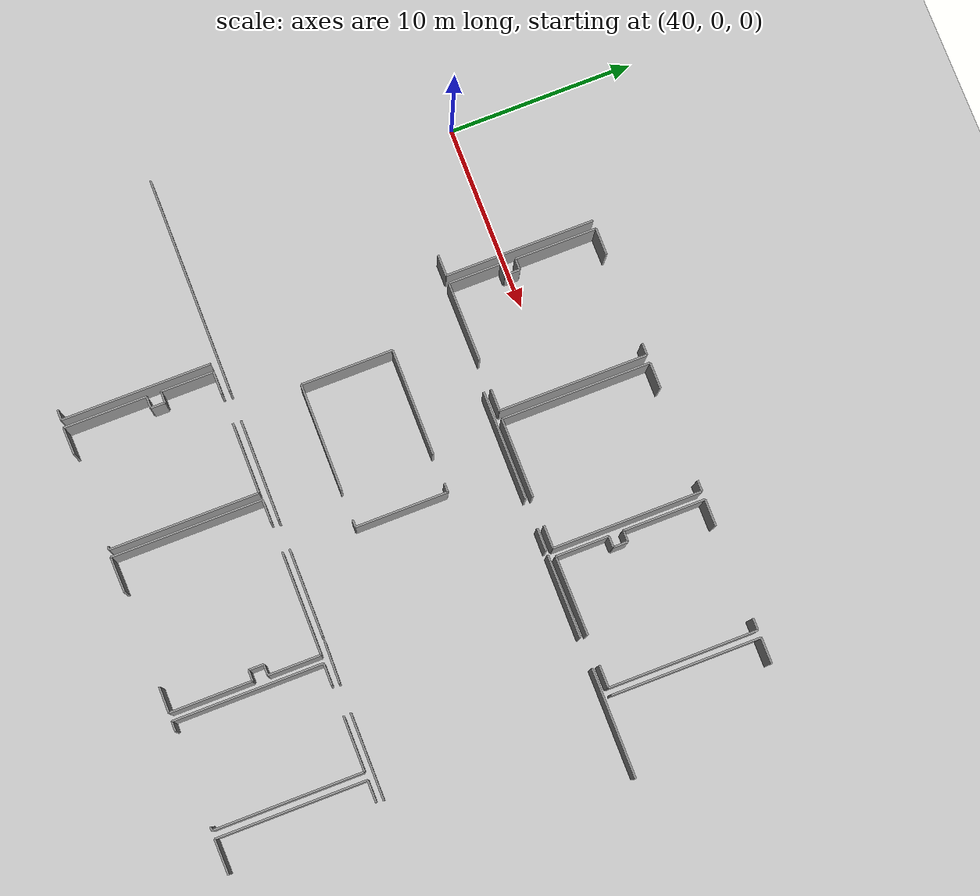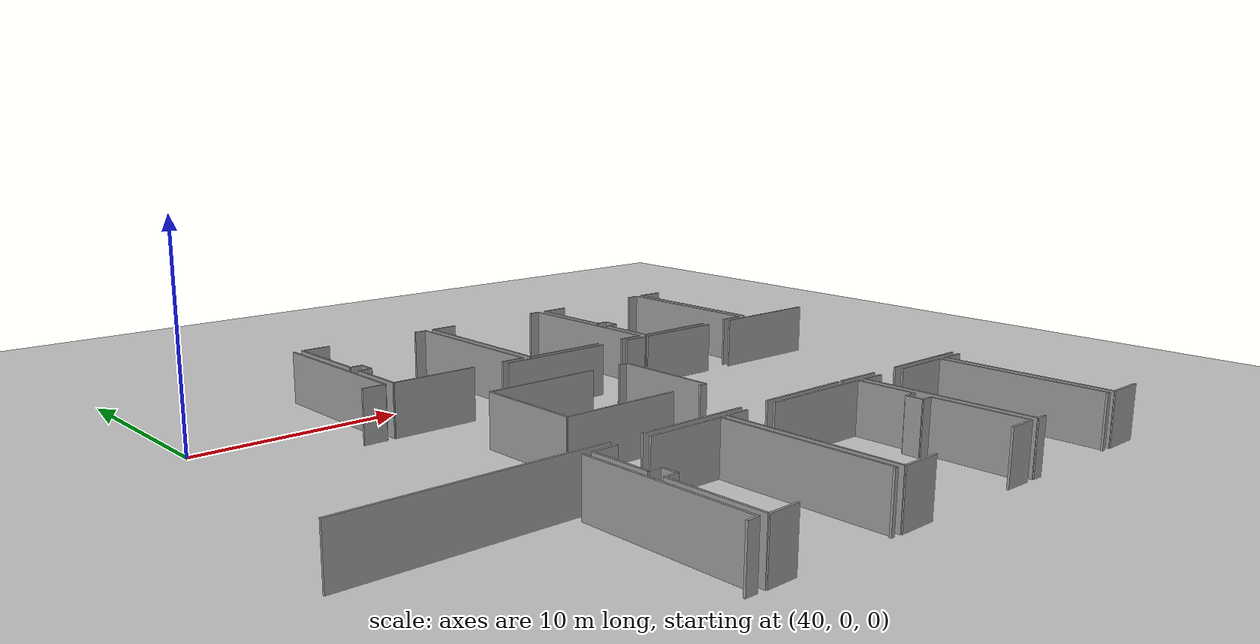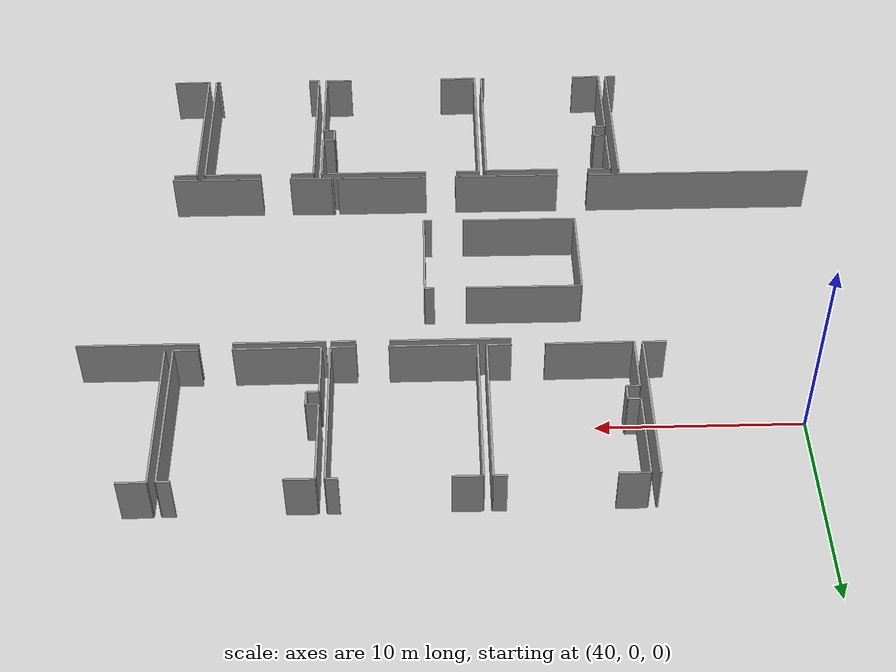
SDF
<sdf version="1.6">
 <world name="default">
  <model name="ground_plane">
   <static>1</static>
   <link name="link">
    <collision name="collision">
     <geometry><plane><normal>0 0 1</normal><size>100 100</size></plane></geometry>
     <surface><friction><ode><mu>100</mu><mu2>50</mu2></ode></friction></surface>
    </collision>
    <visual name="visual">
     <cast_shadows>0</cast_shadows>
     <geometry><plane><normal>0 0 1</normal><size>100 100</size></plane></geometry>
     <material>
      <script><uri>file://media/materials/scripts/gazebo.material</uri><name>Gazebo/Grey</name></script>
     </material>
    </visual>
   </link>
  </model>
  <model name="0510035341_A_40_1_103">
   <static>1</static>
   <link name="Wall_498">
    <collision name="Wall_498_Collision">
     <geometry><box><size>5.82058282014 0.1 2.5</size></box></geometry>
     <pose>2.91029141007 0 1.25 0 0 0</pose>
    </collision>
    <visual name="Wall_498_Visual">
     <pose>2.91029141007 0 1.25 0 0 0</pose>
     <geometry><box><size>5.82058282014 0.1 2.5</size></box></geometry>
     <material>
      <script><uri>file://media/materials/scripts/gazebo.material</uri><name>Gazebo/Grey</name></script>
      <ambient>1 1 1 1</ambient>
     </material>
    </visual>
    <pose>166.751063425 -27.7041457685 0 0 0 0.0</pose>
   </link>
   <link name="Wall_499">
    <collision name="Wall_499_Collision">
     <geometry><box><size>1.2197320805 0.1 2.5</size></box></geometry>
     <pose>0.609866040251 0 1.25 0 0 0</pose>
    </collision>
    <visual name="Wall_499_Visual">
     <pose>0.609866040251 0 1.25 0 0 0</pose>
     <geometry><box><size>1.2197320805 0.1 2.5</size></box></geometry>
     <material>
      <script><uri>file://media/materials/scripts/gazebo.material</uri><name>Gazebo/Grey</name></script>
      <ambient>1 1 1 1</ambient>
     </material>
    </visual>
    <pose>174.164941908 -27.7041457685 0 0 0 0.0</pose>
   </link>
   <link name="Wall_500">
    <collision name="Wall_500_Collision">
     <geometry><box><size>4.67856009142 0.1 2.5</size></box></geometry>
     <pose>2.33928004571 0 1.25 0 0 0</pose>
    </collision>
    <visual name="Wall_500_Visual">
     <pose>2.33928004571 0 1.25 0 0 0</pose>
     <geometry><box><size>4.67856009142 0.1 2.5</size></box></geometry>
     <material>
      <script><uri>file://media/materials/scripts/gazebo.material</uri><name>Gazebo/Grey</name></script>
      <ambient>1 1 1 1</ambient>
     </material>
    </visual>
    <pose>175.384673989 -39.6665608533 0 0 0 3.14159265359</pose>
   </link>
   <link name="Wall_501">
    <collision name="Wall_501_Collision">
     <geometry><box><size>5.42263983239 0.1 2.5</size></box></geometry>
     <pose>2.7113199162 0 1.25 0 0 0</pose>
    </collision>
    <visual name="Wall_501_Visual">
     <pose>2.7113199162 0 1.25 0 0 0</pose>
     <geometry><box><size>5.42263983239 0.1 2.5</size></box></geometry>
     <material>
      <script><uri>file://media/materials/scripts/gazebo.material</uri><name>Gazebo/Grey</name></script>
      <ambient>1 1 1 1</ambient>
     </material>
    </visual>
    <pose>169.148371532 -39.6665608533 0 0 0 3.14159265359</pose>
   </link>
   <link name="Wall_502">
    <collision name="Wall_502_Collision">
     <geometry><box><size>11.6873849279 0.1 2.5</size></box></geometry>
     <pose>5.84369246397 0 1.25 0 0 0</pose>
    </collision>
    <visual name="Wall_502_Visual">
     <pose>5.84369246397 0 1.25 0 0 0</pose>
     <geometry><box><size>11.6873849279 0.1 2.5</size></box></geometry>
     <material>
      <script><uri>file://media/materials/scripts/gazebo.material</uri><name>Gazebo/Grey</name></script>
      <ambient>1 1 1 1</ambient>
     </material>
    </visual>
    <pose>162.113389626 -39.6665608533 0 0 0 3.14159265359</pose>
   </link>
   <link name="Wall_505">
    <collision name="Wall_505_Collision">
     <geometry><box><size>4.94927306203 0.1 2.5</size></box></geometry>
     <pose>2.47463653101 0 1.25 0 0 0</pose>
    </collision>
    <visual name="Wall_505_Visual">
     <pose>2.47463653101 0 1.25 0 0 0</pose>
     <geometry><box><size>4.94927306203 0.1 2.5</size></box></geometry>
     <material>
      <script><uri>file://media/materials/scripts/gazebo.material</uri><name>Gazebo/Grey</name></script>
      <ambient>1 1 1 1</ambient>
     </material>
    </visual>
    <pose>163.089581614 -36.1818297251 0 0 0 1.57079632679</pose>
   </link>
   <link name="Wall_506">
    <collision name="Wall_506_Collision">
     <geometry><box><size>5.70681226589 0.1 2.5</size></box></geometry>
     <pose>2.85340613294 0 1.25 0 0 0</pose>
    </collision>
    <visual name="Wall_506_Visual">
     <pose>2.85340613294 0 1.25 0 0 0</pose>
     <geometry><box><size>5.70681226589 0.1 2.5</size></box></geometry>
     <material>
      <script><uri>file://media/materials/scripts/gazebo.material</uri><name>Gazebo/Grey</name></script>
      <ambient>1 1 1 1</ambient>
     </material>
    </visual>
    <pose>163.089581614 -31.2325566631 0 0 0 0.0</pose>
   </link>
   <link name="Wall_507">
    <collision name="Wall_507_Collision">
     <geometry><box><size>0.472097009714 0.1 2.5</size></box></geometry>
     <pose>0.236048504857 0 1.25 0 0 0</pose>
    </collision>
    <visual name="Wall_507_Visual">
     <pose>0.236048504857 0 1.25 0 0 0</pose>
     <geometry><box><size>0.472097009714 0.1 2.5</size></box></geometry>
     <material>
      <script><uri>file://media/materials/scripts/gazebo.material</uri><name>Gazebo/Grey</name></script>
      <ambient>1 1 1 1</ambient>
     </material>
    </visual>
    <pose>170.377499841 -31.2325566631 0 0 0 0.0</pose>
   </link>
   <link name="Wall_508">
    <collision name="Wall_508_Collision">
     <geometry><box><size>4.96095486001 0.1 2.5</size></box></geometry>
     <pose>2.48047743 0 1.25 0 0 0</pose>
    </collision>
    <visual name="Wall_508_Visual">
     <pose>2.48047743 0 1.25 0 0 0</pose>
     <geometry><box><size>4.96095486001 0.1 2.5</size></box></geometry>
     <material>
      <script><uri>file://media/materials/scripts/gazebo.material</uri><name>Gazebo/Grey</name></script>
      <ambient>1 1 1 1</ambient>
     </material>
    </visual>
    <pose>170.849596851 -31.2325566631 0 0 0 -1.57079632679</pose>
   </link>
   <link name="Wall_509">
    <collision name="Wall_509_Collision">
     <geometry><box><size>0.395149514317 0.1 2.5</size></box></geometry>
     <pose>0.197574757158 0 1.25 0 0 0</pose>
    </collision>
    <visual name="Wall_509_Visual">
     <pose>0.197574757158 0 1.25 0 0 0</pose>
     <geometry><box><size>0.395149514317 0.1 2.5</size></box></geometry>
     <material>
      <script><uri>file://media/materials/scripts/gazebo.material</uri><name>Gazebo/Grey</name></script>
      <ambient>1 1 1 1</ambient>
     </material>
    </visual>
    <pose>170.849596851 -36.1935115231 0 0 0 3.14159265359</pose>
   </link>
   <link name="Wall_510">
    <collision name="Wall_510_Collision">
     <geometry><box><size>5.76497913931 0.1 2.5</size></box></geometry>
     <pose>2.88248956966 0 1.25 0 0 0</pose>
    </collision>
    <visual name="Wall_510_Visual">
     <pose>2.88248956966 0 1.25 0 0 0</pose>
     <geometry><box><size>5.76497913931 0.1 2.5</size></box></geometry>
     <material>
      <script><uri>file://media/materials/scripts/gazebo.material</uri><name>Gazebo/Grey</name></script>
      <ambient>1 1 1 1</ambient>
     </material>
    </visual>
    <pose>168.854548918 -36.1935115231 0 0 0 3.13956631391</pose>
   </link>
   <link name="Wall_511">
    <collision name="Wall_511_Collision">
     <geometry><box><size>0.100311091359 0.1 2.5</size></box></geometry>
     <pose>0.0501555456797 0 1.25 0 0 0</pose>
    </collision>
    <visual name="Wall_511_Visual">
     <pose>0.0501555456797 0 1.25 0 0 0</pose>
     <geometry><box><size>0.100311091359 0.1 2.5</size></box></geometry>
     <material>
      <script><uri>file://media/materials/scripts/gazebo.material</uri><name>Gazebo/Grey</name></script>
      <ambient>1 1 1 1</ambient>
     </material>
    </visual>
    <pose>175.700590439 -39.6571646245 0 0 0 3.14159265359</pose>
   </link>
   <link name="Wall_512">
    <collision name="Wall_512_Collision">
     <geometry><box><size>4.46066916386 0.1 2.5</size></box></geometry>
     <pose>2.23033458193 0 1.25 0 0 0</pose>
    </collision>
    <visual name="Wall_512_Visual">
     <pose>2.23033458193 0 1.25 0 0 0</pose>
     <geometry><box><size>4.46066916386 0.1 2.5</size></box></geometry>
     <material>
      <script><uri>file://media/materials/scripts/gazebo.material</uri><name>Gazebo/Grey</name></script>
      <ambient>1 1 1 1</ambient>
     </material>
    </visual>
    <pose>175.600279347 -27.7023681036 0 0 0 0.0</pose>
   </link>
   <link name="Wall_513">
    <collision name="Wall_513_Collision">
     <geometry><box><size>5.85232683639 0.1 2.5</size></box></geometry>
     <pose>2.9261634182 0 1.25 0 0 0</pose>
    </collision>
    <visual name="Wall_513_Visual">
     <pose>2.9261634182 0 1.25 0 0 0</pose>
     <geometry><box><size>5.85232683639 0.1 2.5</size></box></geometry>
     <material>
      <script><uri>file://media/materials/scripts/gazebo.material</uri><name>Gazebo/Grey</name></script>
      <ambient>1 1 1 1</ambient>
     </material>
    </visual>
    <pose>181.66440226 -27.7023681036 0 0 0 0.0</pose>
   </link>
   <link name="Wall_518">
    <collision name="Wall_518_Collision">
     <geometry><box><size>4.63361056441 0.1 2.5</size></box></geometry>
     <pose>2.3168052822 0 1.25 0 0 0</pose>
    </collision>
    <visual name="Wall_518_Visual">
     <pose>2.3168052822 0 1.25 0 0 0</pose>
     <geometry><box><size>4.63361056441 0.1 2.5</size></box></geometry>
     <material>
      <script><uri>file://media/materials/scripts/gazebo.material</uri><name>Gazebo/Grey</name></script>
      <ambient>1 1 1 1</ambient>
     </material>
    </visual>
    <pose>184.048504857 -39.7005904387 0 0 0 3.14159265359</pose>
   </link>
   <link name="Wall_519">
    <collision name="Wall_519_Collision">
     <geometry><box><size>2.18772073517 0.1 2.5</size></box></geometry>
     <pose>1.09386036759 0 1.25 0 0 0</pose>
    </collision>
    <visual name="Wall_519_Visual">
     <pose>1.09386036759 0 1.25 0 0 0</pose>
     <geometry><box><size>2.18772073517 0.1 2.5</size></box></geometry>
     <material>
      <script><uri>file://media/materials/scripts/gazebo.material</uri><name>Gazebo/Grey</name></script>
      <ambient>1 1 1 1</ambient>
     </material>
    </visual>
    <pose>177.887880135 -39.7005904387 0 0 0 3.12174155204</pose>
   </link>
   <link name="Wall_570">
    <collision name="Wall_570_Collision">
     <geometry><box><size>8.03022030347 0.1 2.5</size></box></geometry>
     <pose>4.01511015174 0 1.25 0 0 0</pose>
    </collision>
    <visual name="Wall_570_Visual">
     <pose>4.01511015174 0 1.25 0 0 0</pose>
     <geometry><box><size>8.03022030347 0.1 2.5</size></box></geometry>
     <material>
      <script><uri>file://media/materials/scripts/gazebo.material</uri><name>Gazebo/Grey</name></script>
      <ambient>1 1 1 1</ambient>
     </material>
    </visual>
    <pose>160.463462637 -19.2884261317 0 0 0 -1.57079632679</pose>
   </link>
   <link name="Wall_571">
    <collision name="Wall_571_Collision">
     <geometry><box><size>1.13643578186 0.1 2.5</size></box></geometry>
     <pose>0.568217890928 0 1.25 0 0 0</pose>
    </collision>
    <visual name="Wall_571_Visual">
     <pose>0.568217890928 0 1.25 0 0 0</pose>
     <geometry><box><size>1.13643578186 0.1 2.5</size></box></geometry>
     <material>
      <script><uri>file://media/materials/scripts/gazebo.material</uri><name>Gazebo/Grey</name></script>
      <ambient>1 1 1 1</ambient>
     </material>
    </visual>
    <pose>160.463462637 -27.3186464351 0 0 0 3.14159265359</pose>
   </link>
   <link name="Wall_573">
    <collision name="Wall_573_Collision">
     <geometry><box><size>2.82801091994 0.1 2.5</size></box></geometry>
     <pose>1.41400545997 0 1.25 0 0 0</pose>
    </collision>
    <visual name="Wall_573_Visual">
     <pose>1.41400545997 0 1.25 0 0 0</pose>
     <geometry><box><size>2.82801091994 0.1 2.5</size></box></geometry>
     <material>
      <script><uri>file://media/materials/scripts/gazebo.material</uri><name>Gazebo/Grey</name></script>
      <ambient>1 1 1 1</ambient>
     </material>
    </visual>
    <pose>160.879944131 -27.3310900895 0 0 0 1.57079632679</pose>
   </link>
   <link name="Wall_574">
    <collision name="Wall_574_Collision">
     <geometry><box><size>0.631324995238 0.1 2.5</size></box></geometry>
     <pose>0.315662497619 0 1.25 0 0 0</pose>
    </collision>
    <visual name="Wall_574_Visual">
     <pose>0.315662497619 0 1.25 0 0 0</pose>
     <geometry><box><size>0.631324995238 0.1 2.5</size></box></geometry>
     <material>
      <script><uri>file://media/materials/scripts/gazebo.material</uri><name>Gazebo/Grey</name></script>
      <ambient>1 1 1 1</ambient>
     </material>
    </visual>
    <pose>160.879944131 -24.5030791696 0 0 0 0.0</pose>
   </link>
   <link name="Wall_575">
    <collision name="Wall_575_Collision">
     <geometry><box><size>0.795632023364 0.1 2.5</size></box></geometry>
     <pose>0.397816011682 0 1.25 0 0 0</pose>
    </collision>
    <visual name="Wall_575_Visual">
     <pose>0.397816011682 0 1.25 0 0 0</pose>
     <geometry><box><size>0.795632023364 0.1 2.5</size></box></geometry>
     <material>
      <script><uri>file://media/materials/scripts/gazebo.material</uri><name>Gazebo/Grey</name></script>
      <ambient>1 1 1 1</ambient>
     </material>
    </visual>
    <pose>161.511269126 -24.5030791696 0 0 0 1.57079632679</pose>
   </link>
   <link name="Wall_576">
    <collision name="Wall_576_Collision">
     <geometry><box><size>0.605929782236 0.1 2.5</size></box></geometry>
     <pose>0.302964891118 0 1.25 0 0 0</pose>
    </collision>
    <visual name="Wall_576_Visual">
     <pose>0.302964891118 0 1.25 0 0 0</pose>
     <geometry><box><size>0.605929782236 0.1 2.5</size></box></geometry>
     <material>
      <script><uri>file://media/materials/scripts/gazebo.material</uri><name>Gazebo/Grey</name></script>
      <ambient>1 1 1 1</ambient>
     </material>
    </visual>
    <pose>161.511269126 -23.7074471462 0 0 0 3.14159265359</pose>
   </link>
   <link name="Wall_577">
    <collision name="Wall_577_Collision">
     <geometry><box><size>4.4093708336 0.1 2.5</size></box></geometry>
     <pose>2.2046854168 0 1.25 0 0 0</pose>
    </collision>
    <visual name="Wall_577_Visual">
     <pose>2.2046854168 0 1.25 0 0 0</pose>
     <geometry><box><size>4.4093708336 0.1 2.5</size></box></geometry>
     <material>
      <script><uri>file://media/materials/scripts/gazebo.material</uri><name>Gazebo/Grey</name></script>
      <ambient>1 1 1 1</ambient>
     </material>
    </visual>
    <pose>160.905339344 -23.7074471462 0 0 0 1.57079632679</pose>
   </link>
   <link name="Wall_578">
    <collision name="Wall_578_Collision">
     <geometry><box><size>1.44549552409 0.1 2.5</size></box></geometry>
     <pose>0.722747762047 0 1.25 0 0 0</pose>
    </collision>
    <visual name="Wall_578_Visual">
     <pose>0.722747762047 0 1.25 0 0 0</pose>
     <geometry><box><size>1.44549552409 0.1 2.5</size></box></geometry>
     <material>
      <script><uri>file://media/materials/scripts/gazebo.material</uri><name>Gazebo/Grey</name></script>
      <ambient>1 1 1 1</ambient>
     </material>
    </visual>
    <pose>160.905339344 -19.2980763126 0 0 0 0.0</pose>
   </link>
   <link name="Wall_579">
    <collision name="Wall_579_Collision">
     <geometry><box><size>0.639705415529 0.1 2.5</size></box></geometry>
     <pose>0.319852707765 0 1.25 0 0 0</pose>
    </collision>
    <visual name="Wall_579_Visual">
     <pose>0.319852707765 0 1.25 0 0 0</pose>
     <geometry><box><size>0.639705415529 0.1 2.5</size></box></geometry>
     <material>
      <script><uri>file://media/materials/scripts/gazebo.material</uri><name>Gazebo/Grey</name></script>
      <ambient>1 1 1 1</ambient>
     </material>
    </visual>
    <pose>167.286648467 -19.2980763126 0 0 0 0.0</pose>
   </link>
   <link name="Wall_580">
    <collision name="Wall_580_Collision">
     <geometry><box><size>8.01218970224 0.1 2.5</size></box></geometry>
     <pose>4.00609485112 0 1.25 0 0 0</pose>
    </collision>
    <visual name="Wall_580_Visual">
     <pose>4.00609485112 0 1.25 0 0 0</pose>
     <geometry><box><size>8.01218970224 0.1 2.5</size></box></geometry>
     <material>
      <script><uri>file://media/materials/scripts/gazebo.material</uri><name>Gazebo/Grey</name></script>
      <ambient>1 1 1 1</ambient>
     </material>
    </visual>
    <pose>167.926353882 -19.2980763126 0 0 0 -1.57079632679</pose>
   </link>
   <link name="Wall_581">
    <collision name="Wall_581_Collision">
     <geometry><box><size>1.18392483017 0.1 2.5</size></box></geometry>
     <pose>0.591962415085 0 1.25 0 0 0</pose>
    </collision>
    <visual name="Wall_581_Visual">
     <pose>0.591962415085 0 1.25 0 0 0</pose>
     <geometry><box><size>1.18392483017 0.1 2.5</size></box></geometry>
     <material>
      <script><uri>file://media/materials/scripts/gazebo.material</uri><name>Gazebo/Grey</name></script>
      <ambient>1 1 1 1</ambient>
     </material>
    </visual>
    <pose>167.926353882 -27.3102660149 0 0 0 3.14159265359</pose>
   </link>
   <link name="Wall_582">
    <collision name="Wall_582_Collision">
     <geometry><box><size>4.25095571002 0.1 2.5</size></box></geometry>
     <pose>2.12547785501 0 1.25 0 0 0</pose>
    </collision>
    <visual name="Wall_582_Visual">
     <pose>2.12547785501 0 1.25 0 0 0</pose>
     <geometry><box><size>4.25095571002 0.1 2.5</size></box></geometry>
     <material>
      <script><uri>file://media/materials/scripts/gazebo.material</uri><name>Gazebo/Grey</name></script>
      <ambient>1 1 1 1</ambient>
     </material>
    </visual>
    <pose>165.130848835 -27.3102660149 0 0 0 -3.1366939533</pose>
   </link>
   <link name="Wall_583">
    <collision name="Wall_583_Collision">
     <geometry><box><size>8.04850485683 0.1 2.5</size></box></geometry>
     <pose>4.02425242842 0 1.25 0 0 0</pose>
    </collision>
    <visual name="Wall_583_Visual">
     <pose>4.02425242842 0 1.25 0 0 0</pose>
     <geometry><box><size>8.04850485683 0.1 2.5</size></box></geometry>
     <material>
      <script><uri>file://media/materials/scripts/gazebo.material</uri><name>Gazebo/Grey</name></script>
      <ambient>1 1 1 1</ambient>
     </material>
    </visual>
    <pose>168.354517174 -27.343787696 0 0 0 1.57079632679</pose>
   </link>
   <link name="Wall_584">
    <collision name="Wall_584_Collision">
     <geometry><box><size>1.41095803441 0.1 2.5</size></box></geometry>
     <pose>0.705479017205 0 1.25 0 0 0</pose>
    </collision>
    <visual name="Wall_584_Visual">
     <pose>0.705479017205 0 1.25 0 0 0</pose>
     <geometry><box><size>1.41095803441 0.1 2.5</size></box></geometry>
     <material>
      <script><uri>file://media/materials/scripts/gazebo.material</uri><name>Gazebo/Grey</name></script>
      <ambient>1 1 1 1</ambient>
     </material>
    </visual>
    <pose>168.354517174 -19.2952828392 0 0 0 0.0</pose>
   </link>
   <link name="Wall_585">
    <collision name="Wall_585_Collision">
     <geometry><box><size>0.580788521364 0.1 2.5</size></box></geometry>
     <pose>0.290394260682 0 1.25 0 0 0</pose>
    </collision>
    <visual name="Wall_585_Visual">
     <pose>0.290394260682 0 1.25 0 0 0</pose>
     <geometry><box><size>0.580788521364 0.1 2.5</size></box></geometry>
     <material>
      <script><uri>file://media/materials/scripts/gazebo.material</uri><name>Gazebo/Grey</name></script>
      <ambient>1 1 1 1</ambient>
     </material>
    </visual>
    <pose>174.803885468 -19.2952828392 0 0 0 0.0</pose>
   </link>
   <link name="Wall_586">
    <collision name="Wall_586_Collision">
     <geometry><box><size>8.03910862802 0.1 2.5</size></box></geometry>
     <pose>4.01955431401 0 1.25 0 0 0</pose>
    </collision>
    <visual name="Wall_586_Visual">
     <pose>4.01955431401 0 1.25 0 0 0</pose>
     <geometry><box><size>8.03910862802 0.1 2.5</size></box></geometry>
     <material>
      <script><uri>file://media/materials/scripts/gazebo.material</uri><name>Gazebo/Grey</name></script>
      <ambient>1 1 1 1</ambient>
     </material>
    </visual>
    <pose>175.384673989 -19.2952828392 0 0 0 -1.57079632679</pose>
   </link>
   <link name="Wall_587">
    <collision name="Wall_587_Collision">
     <geometry><box><size>1.22023998476 0.1 2.5</size></box></geometry>
     <pose>0.610119992381 0 1.25 0 0 0</pose>
    </collision>
    <visual name="Wall_587_Visual">
     <pose>0.610119992381 0 1.25 0 0 0</pose>
     <geometry><box><size>1.22023998476 0.1 2.5</size></box></geometry>
     <material>
      <script><uri>file://media/materials/scripts/gazebo.material</uri><name>Gazebo/Grey</name></script>
      <ambient>1 1 1 1</ambient>
     </material>
    </visual>
    <pose>175.384673989 -27.3343914672 0 0 0 3.14159265359</pose>
   </link>
   <link name="Wall_588">
    <collision name="Wall_588_Collision">
     <geometry><box><size>4.25700992545 0.1 2.5</size></box></geometry>
     <pose>2.12850496272 0 1.25 0 0 0</pose>
    </collision>
    <visual name="Wall_588_Visual">
     <pose>2.12850496272 0 1.25 0 0 0</pose>
     <geometry><box><size>4.25700992545 0.1 2.5</size></box></geometry>
     <material>
      <script><uri>file://media/materials/scripts/gazebo.material</uri><name>Gazebo/Grey</name></script>
      <ambient>1 1 1 1</ambient>
     </material>
    </visual>
    <pose>172.611516729 -27.3343914672 0 0 0 -3.13938541503</pose>
   </link>
   <link name="Wall_589">
    <collision name="Wall_589_Collision">
     <geometry><box><size>2.85518379785 0.1 2.5</size></box></geometry>
     <pose>1.42759189893 0 1.25 0 0 0</pose>
    </collision>
    <visual name="Wall_589_Visual">
     <pose>1.42759189893 0 1.25 0 0 0</pose>
     <geometry><box><size>2.85518379785 0.1 2.5</size></box></geometry>
     <material>
      <script><uri>file://media/materials/scripts/gazebo.material</uri><name>Gazebo/Grey</name></script>
      <ambient>1 1 1 1</ambient>
     </material>
    </visual>
    <pose>175.817408419 -27.3508983557 0 0 0 1.57079632679</pose>
   </link>
   <link name="Wall_590">
    <collision name="Wall_590_Collision">
     <geometry><box><size>0.601104691766 0.1 2.5</size></box></geometry>
     <pose>0.300552345883 0 1.25 0 0 0</pose>
    </collision>
    <visual name="Wall_590_Visual">
     <pose>0.300552345883 0 1.25 0 0 0</pose>
     <geometry><box><size>0.601104691766 0.1 2.5</size></box></geometry>
     <material>
      <script><uri>file://media/materials/scripts/gazebo.material</uri><name>Gazebo/Grey</name></script>
      <ambient>1 1 1 1</ambient>
     </material>
    </visual>
    <pose>175.817408419 -24.4957145578 0 0 0 0.0</pose>
   </link>
   <link name="Wall_591">
    <collision name="Wall_591_Collision">
     <geometry><box><size>0.784712081773 0.1 2.5</size></box></geometry>
     <pose>0.392356040886 0 1.25 0 0 0</pose>
    </collision>
    <visual name="Wall_591_Visual">
     <pose>0.392356040886 0 1.25 0 0 0</pose>
     <geometry><box><size>0.784712081773 0.1 2.5</size></box></geometry>
     <material>
      <script><uri>file://media/materials/scripts/gazebo.material</uri><name>Gazebo/Grey</name></script>
      <ambient>1 1 1 1</ambient>
     </material>
    </visual>
    <pose>176.41851311 -24.4957145578 0 0 0 1.57079632679</pose>
   </link>
   <link name="Wall_592">
    <collision name="Wall_592_Collision">
     <geometry><box><size>0.601104691766 0.1 2.5</size></box></geometry>
     <pose>0.300552345883 0 1.25 0 0 0</pose>
    </collision>
    <visual name="Wall_592_Visual">
     <pose>0.300552345883 0 1.25 0 0 0</pose>
     <geometry><box><size>0.601104691766 0.1 2.5</size></box></geometry>
     <material>
      <script><uri>file://media/materials/scripts/gazebo.material</uri><name>Gazebo/Grey</name></script>
      <ambient>1 1 1 1</ambient>
     </material>
    </visual>
    <pose>176.41851311 -23.711002476 0 0 0 3.14159265359</pose>
   </link>
   <link name="Wall_593">
    <collision name="Wall_593_Collision">
     <geometry><box><size>4.40835502508 0.1 2.5</size></box></geometry>
     <pose>2.20417751254 0 1.25 0 0 0</pose>
    </collision>
    <visual name="Wall_593_Visual">
     <pose>2.20417751254 0 1.25 0 0 0</pose>
     <geometry><box><size>4.40835502508 0.1 2.5</size></box></geometry>
     <material>
      <script><uri>file://media/materials/scripts/gazebo.material</uri><name>Gazebo/Grey</name></script>
      <ambient>1 1 1 1</ambient>
     </material>
    </visual>
    <pose>175.817408419 -23.711002476 0 0 0 1.57079632679</pose>
   </link>
   <link name="Wall_594">
    <collision name="Wall_594_Collision">
     <geometry><box><size>1.43609929528 0.1 2.5</size></box></geometry>
     <pose>0.718049647641 0 1.25 0 0 0</pose>
    </collision>
    <visual name="Wall_594_Visual">
     <pose>0.718049647641 0 1.25 0 0 0</pose>
     <geometry><box><size>1.43609929528 0.1 2.5</size></box></geometry>
     <material>
      <script><uri>file://media/materials/scripts/gazebo.material</uri><name>Gazebo/Grey</name></script>
      <ambient>1 1 1 1</ambient>
     </material>
    </visual>
    <pose>175.817408419 -19.302647451 0 0 0 0.0</pose>
   </link>
   <link name="Wall_595">
    <collision name="Wall_595_Collision">
     <geometry><box><size>0.639451463399 0.1 2.5</size></box></geometry>
     <pose>0.3197257317 0 1.25 0 0 0</pose>
    </collision>
    <visual name="Wall_595_Visual">
     <pose>0.3197257317 0 1.25 0 0 0</pose>
     <geometry><box><size>0.639451463399 0.1 2.5</size></box></geometry>
     <material>
      <script><uri>file://media/materials/scripts/gazebo.material</uri><name>Gazebo/Grey</name></script>
      <ambient>1 1 1 1</ambient>
     </material>
    </visual>
    <pose>182.218271856 -19.302647451 0 0 0 0.0</pose>
   </link>
   <link name="Wall_596">
    <collision name="Wall_596_Collision">
     <geometry><box><size>8.00863437242 0.1 2.5</size></box></geometry>
     <pose>4.00431718621 0 1.25 0 0 0</pose>
    </collision>
    <visual name="Wall_596_Visual">
     <pose>4.00431718621 0 1.25 0 0 0</pose>
     <geometry><box><size>8.00863437242 0.1 2.5</size></box></geometry>
     <material>
      <script><uri>file://media/materials/scripts/gazebo.material</uri><name>Gazebo/Grey</name></script>
      <ambient>1 1 1 1</ambient>
     </material>
    </visual>
    <pose>182.857723319 -19.302647451 0 0 0 -1.57079632679</pose>
   </link>
   <link name="Wall_597">
    <collision name="Wall_597_Collision">
     <geometry><box><size>1.20474890483 0.1 2.5</size></box></geometry>
     <pose>0.602374452416 0 1.25 0 0 0</pose>
    </collision>
    <visual name="Wall_597_Visual">
     <pose>0.602374452416 0 1.25 0 0 0</pose>
     <geometry><box><size>1.20474890483 0.1 2.5</size></box></geometry>
     <material>
      <script><uri>file://media/materials/scripts/gazebo.material</uri><name>Gazebo/Grey</name></script>
      <ambient>1 1 1 1</ambient>
     </material>
    </visual>
    <pose>182.857723319 -27.3112818234 0 0 0 3.14159265359</pose>
   </link>
   <link name="Wall_598">
    <collision name="Wall_598_Collision">
     <geometry><box><size>4.24143954371 0.1 2.5</size></box></geometry>
     <pose>2.12071977185 0 1.25 0 0 0</pose>
    </collision>
    <visual name="Wall_598_Visual">
     <pose>2.12071977185 0 1.25 0 0 0</pose>
     <geometry><box><size>4.24143954371 0.1 2.5</size></box></geometry>
     <material>
      <script><uri>file://media/materials/scripts/gazebo.material</uri><name>Gazebo/Grey</name></script>
      <ambient>1 1 1 1</ambient>
     </material>
    </visual>
    <pose>180.058662942 -27.3112818234 0 0 0 -3.1322521672</pose>
   </link>
   <link name="Wall_599">
    <collision name="Wall_599_Collision">
     <geometry><box><size>8.03275982477 0.1 2.5</size></box></geometry>
     <pose>4.01637991239 0 1.25 0 0 0</pose>
    </collision>
    <visual name="Wall_599_Visual">
     <pose>4.01637991239 0 1.25 0 0 0</pose>
     <geometry><box><size>8.03275982477 0.1 2.5</size></box></geometry>
     <material>
      <script><uri>file://media/materials/scripts/gazebo.material</uri><name>Gazebo/Grey</name></script>
      <ambient>1 1 1 1</ambient>
     </material>
    </visual>
    <pose>183.253126786 -27.3186464351 0 0 0 1.57079632679</pose>
   </link>
   <link name="Wall_600">
    <collision name="Wall_600_Collision">
     <geometry><box><size>1.41400545997 0.1 2.5</size></box></geometry>
     <pose>0.707002729985 0 1.25 0 0 0</pose>
    </collision>
    <visual name="Wall_600_Visual">
     <pose>0.707002729985 0 1.25 0 0 0</pose>
     <geometry><box><size>1.41400545997 0.1 2.5</size></box></geometry>
     <material>
      <script><uri>file://media/materials/scripts/gazebo.material</uri><name>Gazebo/Grey</name></script>
      <ambient>1 1 1 1</ambient>
     </material>
    </visual>
    <pose>183.253126786 -19.2858866104 0 0 0 0.0</pose>
   </link>
   <link name="Wall_696">
    <collision name="Wall_696_Collision">
     <geometry><box><size>8.05866294204 0.1 2.5</size></box></geometry>
     <pose>4.02933147102 0 1.25 0 0 0</pose>
    </collision>
    <visual name="Wall_696_Visual">
     <pose>4.02933147102 0 1.25 0 0 0</pose>
     <geometry><box><size>8.05866294204 0.1 2.5</size></box></geometry>
     <material>
      <script><uri>file://media/materials/scripts/gazebo.material</uri><name>Gazebo/Grey</name></script>
      <ambient>1 1 1 1</ambient>
     </material>
    </visual>
    <pose>182.827756968 -48.1495778046 0 0 0 1.57079632679</pose>
   </link>
   <link name="Wall_697">
    <collision name="Wall_697_Collision">
     <geometry><box><size>1.17478255349 0.1 2.5</size></box></geometry>
     <pose>0.587391276744 0 1.25 0 0 0</pose>
    </collision>
    <visual name="Wall_697_Visual">
     <pose>0.587391276744 0 1.25 0 0 0</pose>
     <geometry><box><size>1.17478255349 0.1 2.5</size></box></geometry>
     <material>
      <script><uri>file://media/materials/scripts/gazebo.material</uri><name>Gazebo/Grey</name></script>
      <ambient>1 1 1 1</ambient>
     </material>
    </visual>
    <pose>182.827756968 -40.0909148625 0 0 0 0.0</pose>
   </link>
   <link name="Wall_705">
    <collision name="Wall_705_Collision">
     <geometry><box><size>1.8886721768 0.1 2.5</size></box></geometry>
     <pose>0.944336088399 0 1.25 0 0 0</pose>
    </collision>
    <visual name="Wall_705_Visual">
     <pose>0.944336088399 0 1.25 0 0 0</pose>
     <geometry><box><size>1.8886721768 0.1 2.5</size></box></geometry>
     <material>
      <script><uri>file://media/materials/scripts/gazebo.material</uri><name>Gazebo/Grey</name></script>
      <ambient>1 1 1 1</ambient>
     </material>
    </visual>
    <pose>184.716145007 -48.1168179798 0 0 0 -3.12424635702</pose>
   </link>
   <link name="Wall_706">
    <collision name="Wall_706_Collision">
     <geometry><box><size>8.03682305885 0.1 2.5</size></box></geometry>
     <pose>4.01841152943 0 1.25 0 0 0</pose>
    </collision>
    <visual name="Wall_706_Visual">
     <pose>4.01841152943 0 1.25 0 0 0</pose>
     <geometry><box><size>8.03682305885 0.1 2.5</size></box></geometry>
     <material>
      <script><uri>file://media/materials/scripts/gazebo.material</uri><name>Gazebo/Grey</name></script>
      <ambient>1 1 1 1</ambient>
     </material>
    </visual>
    <pose>176.657482065 -48.1277379214 0 0 0 1.57079632679</pose>
   </link>
   <link name="Wall_707">
    <collision name="Wall_707_Collision">
     <geometry><box><size>1.18570249508 0.1 2.5</size></box></geometry>
     <pose>0.59285124754 0 1.25 0 0 0</pose>
    </collision>
    <visual name="Wall_707_Visual">
     <pose>0.59285124754 0 1.25 0 0 0</pose>
     <geometry><box><size>1.18570249508 0.1 2.5</size></box></geometry>
     <material>
      <script><uri>file://media/materials/scripts/gazebo.material</uri><name>Gazebo/Grey</name></script>
      <ambient>1 1 1 1</ambient>
     </material>
    </visual>
    <pose>176.657482065 -40.0909148625 0 0 0 0.0</pose>
   </link>
   <link name="Wall_708">
    <collision name="Wall_708_Collision">
     <geometry><box><size>2.95549488921 0.1 2.5</size></box></geometry>
     <pose>1.47774744461 0 1.25 0 0 0</pose>
    </collision>
    <visual name="Wall_708_Visual">
     <pose>1.47774744461 0 1.25 0 0 0</pose>
     <geometry><box><size>2.95549488921 0.1 2.5</size></box></geometry>
     <material>
      <script><uri>file://media/materials/scripts/gazebo.material</uri><name>Gazebo/Grey</name></script>
      <ambient>1 1 1 1</ambient>
     </material>
    </visual>
    <pose>179.44079741 -40.0909148625 0 0 0 0.0</pose>
   </link>
   <link name="Wall_709">
    <collision name="Wall_709_Collision">
     <geometry><box><size>8.03961653228 0.1 2.5</size></box></geometry>
     <pose>4.01980826614 0 1.25 0 0 0</pose>
    </collision>
    <visual name="Wall_709_Visual">
     <pose>4.01980826614 0 1.25 0 0 0</pose>
     <geometry><box><size>8.03961653228 0.1 2.5</size></box></geometry>
     <material>
      <script><uri>file://media/materials/scripts/gazebo.material</uri><name>Gazebo/Grey</name></script>
      <ambient>1 1 1 1</ambient>
     </material>
    </visual>
    <pose>182.396292299 -40.0909148625 0 0 0 -1.57079632679</pose>
   </link>
   <link name="Wall_710">
    <collision name="Wall_710_Collision">
     <geometry><box><size>0.202907751889 0.1 2.5</size></box></geometry>
     <pose>0.101453875944 0 1.25 0 0 0</pose>
    </collision>
    <visual name="Wall_710_Visual">
     <pose>0.101453875944 0 1.25 0 0 0</pose>
     <geometry><box><size>0.202907751889 0.1 2.5</size></box></geometry>
     <material>
      <script><uri>file://media/materials/scripts/gazebo.material</uri><name>Gazebo/Grey</name></script>
      <ambient>1 1 1 1</ambient>
     </material>
    </visual>
    <pose>182.396292299 -48.1305313948 0 0 0 3.14159265359</pose>
   </link>
   <link name="Wall_711">
    <collision name="Wall_711_Collision">
     <geometry><box><size>0.543210788917 0.1 2.5</size></box></geometry>
     <pose>0.271605394459 0 1.25 0 0 0</pose>
    </collision>
    <visual name="Wall_711_Visual">
     <pose>0.271605394459 0 1.25 0 0 0</pose>
     <geometry><box><size>0.543210788917 0.1 2.5</size></box></geometry>
     <material>
      <script><uri>file://media/materials/scripts/gazebo.material</uri><name>Gazebo/Grey</name></script>
      <ambient>1 1 1 1</ambient>
     </material>
    </visual>
    <pose>177.200685671 -48.1305313948 0 0 0 3.13645010893</pose>
   </link>
   <link name="Wall_712">
    <collision name="Wall_712_Collision">
     <geometry><box><size>8.11097708082 0.1 2.5</size></box></geometry>
     <pose>4.05548854041 0 1.25 0 0 0</pose>
    </collision>
    <visual name="Wall_712_Visual">
     <pose>4.05548854041 0 1.25 0 0 0</pose>
     <geometry><box><size>8.11097708082 0.1 2.5</size></box></geometry>
     <material>
      <script><uri>file://media/materials/scripts/gazebo.material</uri><name>Gazebo/Grey</name></script>
      <ambient>1 1 1 1</ambient>
     </material>
    </visual>
    <pose>167.887753159 -48.1688781665 0 0 0 1.57079632679</pose>
   </link>
   <link name="Wall_713">
    <collision name="Wall_713_Collision">
     <geometry><box><size>1.20043171862 0.1 2.5</size></box></geometry>
     <pose>0.600215859311 0 1.25 0 0 0</pose>
    </collision>
    <visual name="Wall_713_Visual">
     <pose>0.600215859311 0 1.25 0 0 0</pose>
     <geometry><box><size>1.20043171862 0.1 2.5</size></box></geometry>
     <material>
      <script><uri>file://media/materials/scripts/gazebo.material</uri><name>Gazebo/Grey</name></script>
      <ambient>1 1 1 1</ambient>
     </material>
    </visual>
    <pose>167.887753159 -40.0579010856 0 0 0 0.0</pose>
   </link>
   <link name="Wall_714">
    <collision name="Wall_714_Collision">
     <geometry><box><size>5.51888768967 0.1 2.5</size></box></geometry>
     <pose>2.75944384484 0 1.25 0 0 0</pose>
    </collision>
    <visual name="Wall_714_Visual">
     <pose>2.75944384484 0 1.25 0 0 0</pose>
     <geometry><box><size>5.51888768967 0.1 2.5</size></box></geometry>
     <material>
      <script><uri>file://media/materials/scripts/gazebo.material</uri><name>Gazebo/Grey</name></script>
      <ambient>1 1 1 1</ambient>
     </material>
    </visual>
    <pose>170.707891562 -40.0579010856 0 0 0 0.0</pose>
   </link>
   <link name="Wall_715">
    <collision name="Wall_715_Collision">
     <geometry><box><size>2.83080439337 0.1 2.5</size></box></geometry>
     <pose>1.41540219669 0 1.25 0 0 0</pose>
    </collision>
    <visual name="Wall_715_Visual">
     <pose>1.41540219669 0 1.25 0 0 0</pose>
     <geometry><box><size>2.83080439337 0.1 2.5</size></box></geometry>
     <material>
      <script><uri>file://media/materials/scripts/gazebo.material</uri><name>Gazebo/Grey</name></script>
      <ambient>1 1 1 1</ambient>
     </material>
    </visual>
    <pose>176.226779252 -40.0579010856 0 0 0 -1.57079632679</pose>
   </link>
   <link name="Wall_716">
    <collision name="Wall_716_Collision">
     <geometry><box><size>0.586375468224 0.1 2.5</size></box></geometry>
     <pose>0.293187734112 0 1.25 0 0 0</pose>
    </collision>
    <visual name="Wall_716_Visual">
     <pose>0.293187734112 0 1.25 0 0 0</pose>
     <geometry><box><size>0.586375468224 0.1 2.5</size></box></geometry>
     <material>
      <script><uri>file://media/materials/scripts/gazebo.material</uri><name>Gazebo/Grey</name></script>
      <ambient>1 1 1 1</ambient>
     </material>
    </visual>
    <pose>176.226779252 -42.888705479 0 0 0 3.14159265359</pose>
   </link>
   <link name="Wall_717">
    <collision name="Wall_717_Collision">
     <geometry><box><size>0.801980826614 0.1 2.5</size></box></geometry>
     <pose>0.400990413307 0 1.25 0 0 0</pose>
    </collision>
    <visual name="Wall_717_Visual">
     <pose>0.400990413307 0 1.25 0 0 0</pose>
     <geometry><box><size>0.801980826614 0.1 2.5</size></box></geometry>
     <material>
      <script><uri>file://media/materials/scripts/gazebo.material</uri><name>Gazebo/Grey</name></script>
      <ambient>1 1 1 1</ambient>
     </material>
    </visual>
    <pose>175.640403784 -42.888705479 0 0 0 -1.57079632679</pose>
   </link>
   <link name="Wall_718">
    <collision name="Wall_718_Collision">
     <geometry><box><size>0.572662053203 0.1 2.5</size></box></geometry>
     <pose>0.286331026601 0 1.25 0 0 0</pose>
    </collision>
    <visual name="Wall_718_Visual">
     <pose>0.286331026601 0 1.25 0 0 0</pose>
     <geometry><box><size>0.572662053203 0.1 2.5</size></box></geometry>
     <material>
      <script><uri>file://media/materials/scripts/gazebo.material</uri><name>Gazebo/Grey</name></script>
      <ambient>1 1 1 1</ambient>
     </material>
    </visual>
    <pose>175.640403784 -43.6906863056 0 0 0 0.0</pose>
   </link>
   <link name="Wall_719">
    <collision name="Wall_719_Collision">
     <geometry><box><size>4.42994095613 0.1 2.5</size></box></geometry>
     <pose>2.21497047806 0 1.25 0 0 0</pose>
    </collision>
    <visual name="Wall_719_Visual">
     <pose>2.21497047806 0 1.25 0 0 0</pose>
     <geometry><box><size>4.42994095613 0.1 2.5</size></box></geometry>
     <material>
      <script><uri>file://media/materials/scripts/gazebo.material</uri><name>Gazebo/Grey</name></script>
      <ambient>1 1 1 1</ambient>
     </material>
    </visual>
    <pose>176.213065837 -43.6906863056 0 0 0 -1.57079632679</pose>
   </link>
   <link name="Wall_720">
    <collision name="Wall_720_Collision">
     <geometry><box><size>1.37464287982 0.1 2.5</size></box></geometry>
     <pose>0.687321439909 0 1.25 0 0 0</pose>
    </collision>
    <visual name="Wall_720_Visual">
     <pose>0.687321439909 0 1.25 0 0 0</pose>
     <geometry><box><size>1.37464287982 0.1 2.5</size></box></geometry>
     <material>
      <script><uri>file://media/materials/scripts/gazebo.material</uri><name>Gazebo/Grey</name></script>
      <ambient>1 1 1 1</ambient>
     </material>
    </visual>
    <pose>176.213065837 -48.1206272618 0 0 0 3.14159265359</pose>
   </link>
   <link name="Wall_721">
    <collision name="Wall_721_Collision">
     <geometry><box><size>1.89128920102 0.1 2.5</size></box></geometry>
     <pose>0.945644600509 0 1.25 0 0 0</pose>
    </collision>
    <visual name="Wall_721_Visual">
     <pose>0.945644600509 0 1.25 0 0 0</pose>
     <geometry><box><size>1.89128920102 0.1 2.5</size></box></geometry>
     <material>
      <script><uri>file://media/materials/scripts/gazebo.material</uri><name>Gazebo/Grey</name></script>
      <ambient>1 1 1 1</ambient>
     </material>
    </visual>
    <pose>169.778426767 -48.1206272618 0 0 0 -3.11607770833</pose>
   </link>
   <link name="Wall_722">
    <collision name="Wall_722_Collision">
     <geometry><box><size>4.46219287664 0.1 2.5</size></box></geometry>
     <pose>2.23109643832 0 1.25 0 0 0</pose>
    </collision>
    <visual name="Wall_722_Visual">
     <pose>2.23109643832 0 1.25 0 0 0</pose>
     <geometry><box><size>4.46219287664 0.1 2.5</size></box></geometry>
     <material>
      <script><uri>file://media/materials/scripts/gazebo.material</uri><name>Gazebo/Grey</name></script>
      <ambient>1 1 1 1</ambient>
     </material>
    </visual>
    <pose>160.872833471 -48.1564345121 0 0 0 1.57079632679</pose>
   </link>
   <link name="Wall_723">
    <collision name="Wall_723_Collision">
     <geometry><box><size>0.625992000508 0.1 2.5</size></box></geometry>
     <pose>0.312996000254 0 1.25 0 0 0</pose>
    </collision>
    <visual name="Wall_723_Visual">
     <pose>0.312996000254 0 1.25 0 0 0</pose>
     <geometry><box><size>0.625992000508 0.1 2.5</size></box></geometry>
     <material>
      <script><uri>file://media/materials/scripts/gazebo.material</uri><name>Gazebo/Grey</name></script>
      <ambient>1 1 1 1</ambient>
     </material>
    </visual>
    <pose>160.872833471 -43.6942416355 0 0 0 0.0</pose>
   </link>
   <link name="Wall_724">
    <collision name="Wall_724_Collision">
     <geometry><box><size>0.769982858231 0.1 2.5</size></box></geometry>
     <pose>0.384991429116 0 1.25 0 0 0</pose>
    </collision>
    <visual name="Wall_724_Visual">
     <pose>0.384991429116 0 1.25 0 0 0</pose>
     <geometry><box><size>0.769982858231 0.1 2.5</size></box></geometry>
     <material>
      <script><uri>file://media/materials/scripts/gazebo.material</uri><name>Gazebo/Grey</name></script>
      <ambient>1 1 1 1</ambient>
     </material>
    </visual>
    <pose>161.498825471 -43.6942416355 0 0 0 1.57079632679</pose>
   </link>
   <link name="Wall_725">
    <collision name="Wall_725_Collision">
     <geometry><box><size>0.606183734366 0.1 2.5</size></box></geometry>
     <pose>0.303091867183 0 1.25 0 0 0</pose>
    </collision>
    <visual name="Wall_725_Visual">
     <pose>0.303091867183 0 1.25 0 0 0</pose>
     <geometry><box><size>0.606183734366 0.1 2.5</size></box></geometry>
     <material>
      <script><uri>file://media/materials/scripts/gazebo.material</uri><name>Gazebo/Grey</name></script>
      <ambient>1 1 1 1</ambient>
     </material>
    </visual>
    <pose>161.498825471 -42.9242587772 0 0 0 3.14159265359</pose>
   </link>
   <link name="Wall_726">
    <collision name="Wall_726_Collision">
     <geometry><box><size>2.82318582947 0.1 2.5</size></box></geometry>
     <pose>1.41159291474 0 1.25 0 0 0</pose>
    </collision>
    <visual name="Wall_726_Visual">
     <pose>1.41159291474 0 1.25 0 0 0</pose>
     <geometry><box><size>2.82318582947 0.1 2.5</size></box></geometry>
     <material>
      <script><uri>file://media/materials/scripts/gazebo.material</uri><name>Gazebo/Grey</name></script>
      <ambient>1 1 1 1</ambient>
     </material>
    </visual>
    <pose>160.892641737 -42.9242587772 0 0 0 1.57079632679</pose>
   </link>
   <link name="Wall_727">
    <collision name="Wall_727_Collision">
     <geometry><box><size>1.20043171862 0.1 2.5</size></box></geometry>
     <pose>0.600215859311 0 1.25 0 0 0</pose>
    </collision>
    <visual name="Wall_727_Visual">
     <pose>0.600215859311 0 1.25 0 0 0</pose>
     <geometry><box><size>1.20043171862 0.1 2.5</size></box></geometry>
     <material>
      <script><uri>file://media/materials/scripts/gazebo.material</uri><name>Gazebo/Grey</name></script>
      <ambient>1 1 1 1</ambient>
     </material>
    </visual>
    <pose>160.892641737 -40.1010729477 0 0 0 0.0</pose>
   </link>
   <link name="Wall_728">
    <collision name="Wall_728_Collision">
     <geometry><box><size>3.78718811504 0.1 2.5</size></box></geometry>
     <pose>1.89359405752 0 1.25 0 0 0</pose>
    </collision>
    <visual name="Wall_728_Visual">
     <pose>1.89359405752 0 1.25 0 0 0</pose>
     <geometry><box><size>3.78718811504 0.1 2.5</size></box></geometry>
     <material>
      <script><uri>file://media/materials/scripts/gazebo.material</uri><name>Gazebo/Grey</name></script>
      <ambient>1 1 1 1</ambient>
     </material>
    </visual>
    <pose>163.716335471 -40.1010729477 0 0 0 0.0</pose>
   </link>
   <link name="Wall_729">
    <collision name="Wall_729_Collision">
     <geometry><box><size>8.01244365437 0.1 2.5</size></box></geometry>
     <pose>4.00622182719 0 1.25 0 0 0</pose>
    </collision>
    <visual name="Wall_729_Visual">
     <pose>4.00622182719 0 1.25 0 0 0</pose>
     <geometry><box><size>8.01244365437 0.1 2.5</size></box></geometry>
     <material>
      <script><uri>file://media/materials/scripts/gazebo.material</uri><name>Gazebo/Grey</name></script>
      <ambient>1 1 1 1</ambient>
     </material>
    </visual>
    <pose>167.503523586 -40.1010729477 0 0 0 -1.57079632679</pose>
   </link>
   <link name="Wall_730">
    <collision name="Wall_730_Collision">
     <geometry><box><size>0.171671639896 0.1 2.5</size></box></geometry>
     <pose>0.0858358199479 0 1.25 0 0 0</pose>
    </collision>
    <visual name="Wall_730_Visual">
     <pose>0.0858358199479 0 1.25 0 0 0</pose>
     <geometry><box><size>0.171671639896 0.1 2.5</size></box></geometry>
     <material>
      <script><uri>file://media/materials/scripts/gazebo.material</uri><name>Gazebo/Grey</name></script>
      <ambient>1 1 1 1</ambient>
     </material>
    </visual>
    <pose>167.503523586 -48.1135166021 0 0 0 3.14159265359</pose>
   </link>
   <link name="Wall_731">
    <collision name="Wall_731_Collision">
     <geometry><box><size>1.45983994842 0.1 2.5</size></box></geometry>
     <pose>0.729919974208 0 1.25 0 0 0</pose>
    </collision>
    <visual name="Wall_731_Visual">
     <pose>0.729919974208 0 1.25 0 0 0</pose>
     <geometry><box><size>1.45983994842 0.1 2.5</size></box></geometry>
     <material>
      <script><uri>file://media/materials/scripts/gazebo.material</uri><name>Gazebo/Grey</name></script>
      <ambient>1 1 1 1</ambient>
     </material>
    </visual>
    <pose>162.33204241 -48.1135166021 0 0 0 -3.11218936539</pose>
   </link>
   <link name="Wall_735">
    <collision name="Wall_735_Collision">
     <geometry><box><size>8.04596533553 0.1 2.5</size></box></geometry>
     <pose>4.02298266777 0 1.25 0 0 0</pose>
    </collision>
    <visual name="Wall_735_Visual">
     <pose>4.02298266777 0 1.25 0 0 0</pose>
     <geometry><box><size>8.04596533553 0.1 2.5</size></box></geometry>
     <material>
      <script><uri>file://media/materials/scripts/gazebo.material</uri><name>Gazebo/Grey</name></script>
      <ambient>1 1 1 1</ambient>
     </material>
    </visual>
    <pose>160.458383595 -40.0746619262 0 0 0 -1.57079632679</pose>
   </link>
   <link name="Wall_736">
    <collision name="Wall_736_Collision">
     <geometry><box><size>0.551584026411 0.1 2.5</size></box></geometry>
     <pose>0.275792013206 0 1.25 0 0 0</pose>
    </collision>
    <visual name="Wall_736_Visual">
     <pose>0.275792013206 0 1.25 0 0 0</pose>
     <geometry><box><size>0.551584026411 0.1 2.5</size></box></geometry>
     <material>
      <script><uri>file://media/materials/scripts/gazebo.material</uri><name>Gazebo/Grey</name></script>
      <ambient>1 1 1 1</ambient>
     </material>
    </visual>
    <pose>160.458383595 -48.1206272618 0 0 0 3.14159265359</pose>
   </link>
   <pose>-112.9 24.0688781665 0 0 0 0</pose>
  </model>
 </world>
</sdf>
